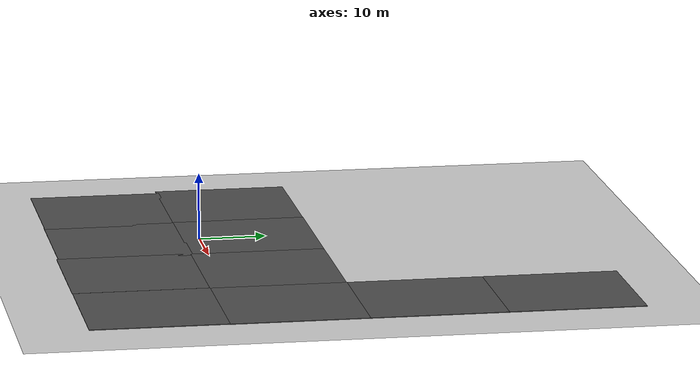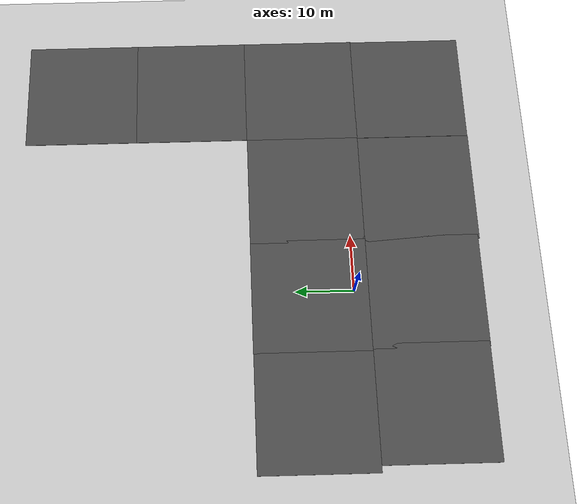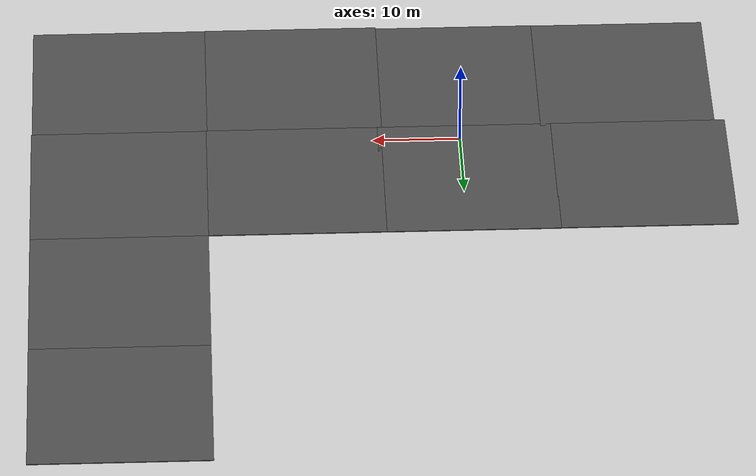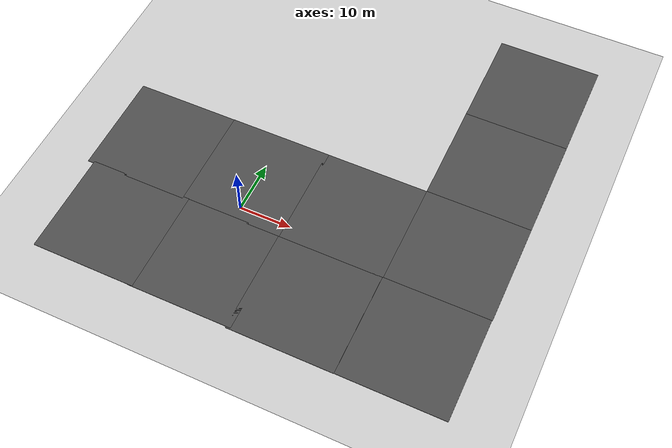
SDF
<sdf version="1.6">
 <world name="default">
  <model name="ground_plane">
   <static>1</static>
   <link name="link">
    <collision name="collision">
     <geometry><plane><normal>0 0 1</normal><size>100 100</size></plane></geometry>
     <surface><friction><ode><mu>100</mu><mu2>50</mu2></ode></friction></surface>
    </collision>
    <visual name="visual">
     <cast_shadows>0</cast_shadows>
     <geometry><plane><normal>0 0 1</normal><size>100 100</size></plane></geometry>
     <material>
      <script><uri>file://media/materials/scripts/gazebo.material</uri><name>Gazebo/Grey</name></script>
     </material>
    </visual>
    <velocity_decay><linear>0</linear><angular>0</angular></velocity_decay>
   </link>
  </model>
  <light name="sun" type="directional">
   <pose>0 0 10 0 -0 0</pose>
   <diffuse>0.8 0.8 0.8 1</diffuse>
   <specular>0.2 0.2 0.2 1</specular>
   <attenuation>
    <range>1000</range>
    <constant>0.9</constant>
    <linear>0.01</linear>
    <quadratic>0.001</quadratic>
   </attenuation>
   <direction>-0.5 0.1 -0.9</direction>
  </light>
  <physics name="default_physics" default="0" type="ode">
   <max_step_size>0.001</max_step_size>
   <real_time_factor>1</real_time_factor>
   <real_time_update_rate>1000</real_time_update_rate>
  </physics>
  <scene><ambient>0.4 0.4 0.4 1</ambient><background>0.7 0.7 0.7 1</background><shadows>1</shadows></scene>
  <spherical_coordinates>
   <surface_model>EARTH_WGS84</surface_model>
   <latitude_deg>0</latitude_deg>
   <longitude_deg>0</longitude_deg>
   <elevation>0</elevation>
   <heading_deg>0</heading_deg>
  </spherical_coordinates>
  <model name="asphalt_plane_3">
   <static>1</static>
   <link name="link">
    <collision name="collision"><geometry><box><size>20 20 0.1</size></box></geometry></collision>
    <visual name="visual">
     <cast_shadows>0</cast_shadows>
     <geometry><box><size>20 20 0.1</size></box></geometry>
     <material>
      <script>
       <uri>model://asphalt_plane/materials/scripts</uri>
       <uri>model://asphalt_plane/materials/textures</uri>
       <name>vrc/asphalt</name>
      </script>
     </material>
    </visual>
    <velocity_decay><linear>0</linear><angular>0</angular></velocity_decay>
   </link>
   <pose>-0.579832 7.43849 0 0 -0 0</pose>
  </model>
  <model name="asphalt_plane_4">
   <static>1</static>
   <link name="link">
    <collision name="collision"><geometry><box><size>20 20 0.1</size></box></geometry></collision>
    <visual name="visual">
     <cast_shadows>0</cast_shadows>
     <geometry><box><size>20 20 0.1</size></box></geometry>
     <material>
      <script>
       <uri>model://asphalt_plane/materials/scripts</uri>
       <uri>model://asphalt_plane/materials/textures</uri>
       <name>vrc/asphalt</name>
      </script>
     </material>
    </visual>
    <velocity_decay><linear>0</linear><angular>0</angular></velocity_decay>
   </link>
   <pose>19 7.43486 0 0 -0 0</pose>
  </model>
  <model name="asphalt_plane_6">
   <static>1</static>
   <link name="link">
    <collision name="collision"><geometry><box><size>20 20 0.1</size></box></geometry></collision>
    <visual name="visual">
     <cast_shadows>0</cast_shadows>
     <geometry><box><size>20 20 0.1</size></box></geometry>
     <material>
      <script>
       <uri>model://asphalt_plane/materials/scripts</uri>
       <uri>model://asphalt_plane/materials/textures</uri>
       <name>vrc/asphalt</name>
      </script>
     </material>
    </visual>
    <velocity_decay><linear>0</linear><angular>0</angular></velocity_decay>
   </link>
   <pose>39 7.49528 0 0 -0 0</pose>
  </model>
  <model name="asphalt_plane_7">
   <static>1</static>
   <link name="link">
    <collision name="collision"><geometry><box><size>20 20 0.1</size></box></geometry></collision>
    <visual name="visual">
     <cast_shadows>0</cast_shadows>
     <geometry><box><size>20 20 0.1</size></box></geometry>
     <material>
      <script>
       <uri>model://asphalt_plane/materials/scripts</uri>
       <uri>model://asphalt_plane/materials/textures</uri>
       <name>vrc/asphalt</name>
      </script>
     </material>
    </visual>
    <velocity_decay><linear>0</linear><angular>0</angular></velocity_decay>
   </link>
   <pose>39 27.4494 0 0 -0 0</pose>
  </model>
  <model name="asphalt_plane_9">
   <static>1</static>
   <link name="link">
    <collision name="collision"><geometry><box><size>20 20 0.1</size></box></geometry></collision>
    <visual name="visual">
     <cast_shadows>0</cast_shadows>
     <geometry><box><size>20 20 0.1</size></box></geometry>
     <material>
      <script>
       <uri>model://asphalt_plane/materials/scripts</uri>
       <uri>model://asphalt_plane/materials/textures</uri>
       <name>vrc/asphalt</name>
      </script>
     </material>
    </visual>
    <velocity_decay><linear>0</linear><angular>0</angular></velocity_decay>
   </link>
   <pose>39 47.4433 0 0 -0 0</pose>
  </model>
  <gravity>0 0 -9.8</gravity>
  <magnetic_field>6e-06 2.3e-05 -4.2e-05</magnetic_field>
  <atmosphere type="adiabatic"/>
  <model name="asphalt_plane_3_clone">
   <static>1</static>
   <link name="link">
    <collision name="collision"><geometry><box><size>20 20 0.1</size></box></geometry></collision>
    <visual name="visual">
     <cast_shadows>0</cast_shadows>
     <geometry><box><size>20 20 0.1</size></box></geometry>
     <material>
      <script>
       <uri>model://asphalt_plane/materials/scripts</uri>
       <uri>model://asphalt_plane/materials/textures</uri>
       <name>vrc/asphalt</name>
      </script>
     </material>
    </visual>
    <velocity_decay><linear>0</linear><angular>0</angular></velocity_decay>
   </link>
   <pose>-0.241119 -12.2747 0 0 -0 0</pose>
  </model>
  <model name="asphalt_plane_3_clone_0">
   <static>1</static>
   <link name="link">
    <collision name="collision"><geometry><box><size>20 20 0.1</size></box></geometry></collision>
    <visual name="visual">
     <cast_shadows>0</cast_shadows>
     <geometry><box><size>20 20 0.1</size></box></geometry>
     <material>
      <script>
       <uri>model://asphalt_plane/materials/scripts</uri>
       <uri>model://asphalt_plane/materials/textures</uri>
       <name>vrc/asphalt</name>
      </script>
     </material>
    </visual>
    <velocity_decay><linear>0</linear><angular>0</angular></velocity_decay>
   </link>
   <pose>18.8844 -12.5116 0 0 -0 0</pose>
  </model>
  <model name="asphalt_plane_3_clone_1">
   <static>1</static>
   <link name="link">
    <collision name="collision"><geometry><box><size>20 20 0.1</size></box></geometry></collision>
    <visual name="visual">
     <cast_shadows>0</cast_shadows>
     <geometry><box><size>20 20 0.1</size></box></geometry>
     <material>
      <script>
       <uri>model://asphalt_plane/materials/scripts</uri>
       <uri>model://asphalt_plane/materials/textures</uri>
       <name>vrc/asphalt</name>
      </script>
     </material>
    </visual>
    <velocity_decay><linear>0</linear><angular>0</angular></velocity_decay>
   </link>
   <pose>38.9068 -12.4659 0 0 -0 0</pose>
  </model>
  <model name="asphalt_plane_3_clone_clone">
   <static>1</static>
   <link name="link">
    <collision name="collision"><geometry><box><size>20 20 0.1</size></box></geometry></collision>
    <visual name="visual">
     <cast_shadows>0</cast_shadows>
     <geometry><box><size>20 20 0.1</size></box></geometry>
     <material>
      <script>
       <uri>model://asphalt_plane/materials/scripts</uri>
       <uri>model://asphalt_plane/materials/textures</uri>
       <name>vrc/asphalt</name>
      </script>
     </material>
    </visual>
    <velocity_decay><linear>0</linear><angular>0</angular></velocity_decay>
   </link>
   <pose>-19.3326 -12.212 0 0 -0 0</pose>
  </model>
  <model name="asphalt_plane_3_clone_clone_0">
   <static>1</static>
   <link name="link">
    <collision name="collision"><geometry><box><size>20 20 0.1</size></box></geometry></collision>
    <visual name="visual">
     <cast_shadows>0</cast_shadows>
     <geometry><box><size>20 20 0.1</size></box></geometry>
     <material>
      <script>
       <uri>model://asphalt_plane/materials/scripts</uri>
       <uri>model://asphalt_plane/materials/textures</uri>
       <name>vrc/asphalt</name>
      </script>
     </material>
    </visual>
    <velocity_decay><linear>0</linear><angular>0</angular></velocity_decay>
   </link>
   <pose>-20.4879 7.40185 0 0 -0 0</pose>
  </model>
 </world>
</sdf>
